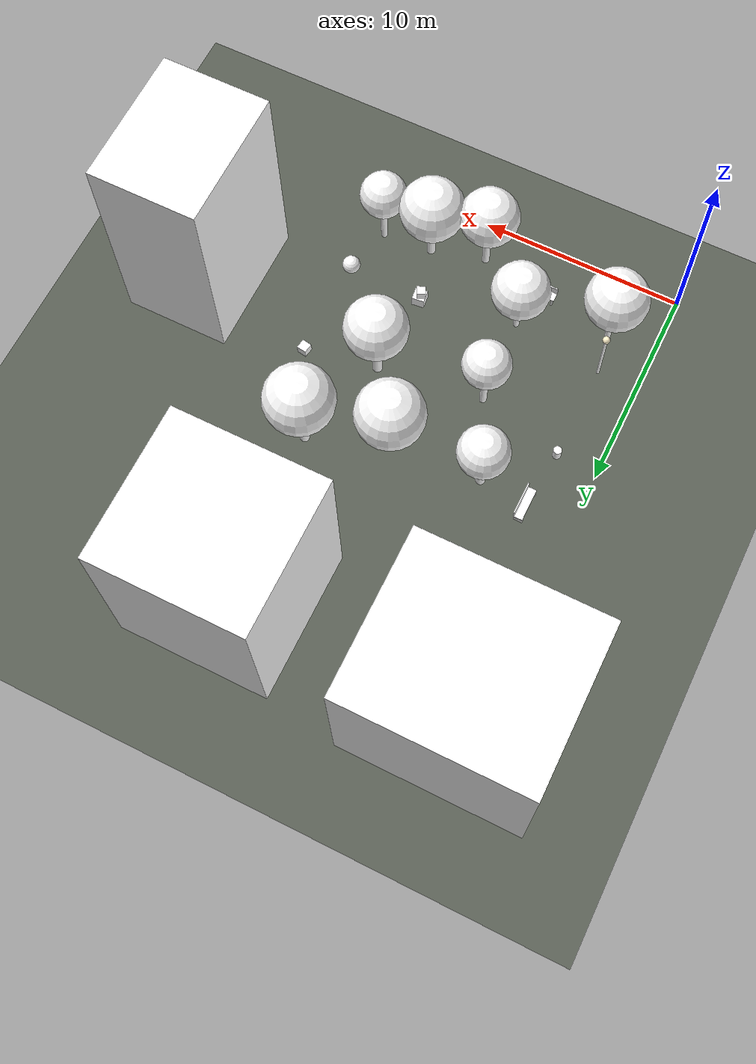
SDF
<sdf version="1.9">
 <world name="park_0">
  <model name="ground_plane">
   <static>true</static>
   <link name="link">
    <collision name="collision">
     <geometry><plane><normal>0 0 1</normal><size>300.000 300.000</size></plane></geometry>
     <surface><friction><ode><mu>1.0</mu><mu2>1.0</mu2></ode></friction></surface>
    </collision>
    <visual name="visual">
     <geometry><plane><normal>0 0 1</normal><size>300.000 300.000</size></plane></geometry>
     <material>
      <ambient>0.350 0.370 0.330 1</ambient>
      <diffuse>0.350 0.370 0.330 1</diffuse>
      <specular>0.08 0.08 0.08 1</specular>
     </material>
    </visual>
   </link>
  </model>
  <model name="building_10">
   <static>true</static>
   <pose>21.057 8.191 0.000 0.0000 0.0000 1.5708</pose>
   <link name="link">
    <collision name="c0">
     <pose>0.000 0.000 5.518 0.0000 0.0000 0.0000</pose>
     <geometry><box><size>6.497 5.113 11.036</size></box></geometry>
    </collision>
    <visual name="v0">
     <pose>0.000 0.000 5.518 0.0000 0.0000 0.0000</pose>
     <geometry><box><size>6.497 5.113 11.036</size></box></geometry>
     <material>
      <ambient>1.000 1.000 1.000 1</ambient>
      <diffuse>1.000 1.000 1.000 1</diffuse>
      <specular>0.08 0.08 0.08 1</specular>
      <pbr>
       <metal>
        <albedo_map>model://omnivla_textures/materials/textures/facade_gray.png</albedo_map>
        <roughness>0.85</roughness>
        <metalness>0.0</metalness>
       </metal>
      </pbr>
     </material>
    </visual>
   </link>
  </model>
  <model name="building_12">
   <static>true</static>
   <pose>0.742 22.301 0.000 0.0000 0.0000 0.0000</pose>
   <link name="link">
    <collision name="c0">
     <pose>0.000 0.000 4.250 0.0000 0.0000 0.0000</pose>
     <geometry><box><size>8.754 7.602 8.500</size></box></geometry>
    </collision>
    <visual name="v0">
     <pose>0.000 0.000 4.250 0.0000 0.0000 0.0000</pose>
     <geometry><box><size>8.754 7.602 8.500</size></box></geometry>
     <material>
      <ambient>1.000 1.000 1.000 1</ambient>
      <diffuse>1.000 1.000 1.000 1</diffuse>
      <specular>0.08 0.08 0.08 1</specular>
      <pbr>
       <metal>
        <albedo_map>model://omnivla_textures/materials/textures/brick_red.png</albedo_map>
        <roughness>0.85</roughness>
        <metalness>0.0</metalness>
       </metal>
      </pbr>
     </material>
    </visual>
   </link>
  </model>
  <model name="building_13">
   <static>true</static>
   <pose>12.219 22.051 0.000 0.0000 0.0000 0.0000</pose>
   <link name="link">
    <collision name="c0">
     <pose>0.000 0.000 4.686 0.0000 0.0000 0.0000</pose>
     <geometry><box><size>7.241 7.101 9.373</size></box></geometry>
    </collision>
    <visual name="v0">
     <pose>0.000 0.000 4.686 0.0000 0.0000 0.0000</pose>
     <geometry><box><size>7.241 7.101 9.373</size></box></geometry>
     <material>
      <ambient>1.000 1.000 1.000 1</ambient>
      <diffuse>1.000 1.000 1.000 1</diffuse>
      <specular>0.08 0.08 0.08 1</specular>
      <pbr>
       <metal>
        <albedo_map>model://omnivla_textures/materials/textures/facade_beige.png</albedo_map>
        <roughness>0.85</roughness>
        <metalness>0.0</metalness>
       </metal>
      </pbr>
     </material>
    </visual>
   </link>
  </model>
  <model name="tree_26">
   <static>true</static>
   <pose>12.823 14.038 0.000 0.0000 0.0000 -3.0492</pose>
   <link name="link">
    <collision name="c0">
     <pose>0.000 0.000 1.591 0.0000 0.0000 0.0000</pose>
     <geometry><cylinder><radius>0.226</radius><length>3.181</length></cylinder></geometry>
    </collision>
    <visual name="v0">
     <pose>0.000 0.000 1.591 0.0000 0.0000 0.0000</pose>
     <geometry><cylinder><radius>0.226</radius><length>3.181</length></cylinder></geometry>
     <material>
      <ambient>1.000 1.000 1.000 1</ambient>
      <diffuse>1.000 1.000 1.000 1</diffuse>
      <specular>0.08 0.08 0.08 1</specular>
      <pbr>
       <metal>
        <albedo_map>model://omnivla_textures/materials/textures/bark.png</albedo_map>
        <roughness>0.85</roughness>
        <metalness>0.0</metalness>
       </metal>
      </pbr>
     </material>
    </visual>
    <visual name="v1">
     <pose>0.000 0.000 4.183 0.0000 0.0000 0.0000</pose>
     <geometry><sphere><radius>1.670</radius></sphere></geometry>
     <material>
      <ambient>1.000 1.000 1.000 1</ambient>
      <diffuse>1.000 1.000 1.000 1</diffuse>
      <specular>0.08 0.08 0.08 1</specular>
      <pbr>
       <metal>
        <albedo_map>model://omnivla_textures/materials/textures/leaves.png</albedo_map>
        <roughness>0.85</roughness>
        <metalness>0.0</metalness>
       </metal>
      </pbr>
     </material>
    </visual>
   </link>
  </model>
  <model name="tree_28">
   <static>true</static>
   <pose>9.056 12.706 0.000 0.0000 0.0000 -1.4694</pose>
   <link name="link">
    <collision name="c0">
     <pose>0.000 0.000 1.321 0.0000 0.0000 0.0000</pose>
     <geometry><cylinder><radius>0.194</radius><length>2.643</length></cylinder></geometry>
    </collision>
    <visual name="v0">
     <pose>0.000 0.000 1.321 0.0000 0.0000 0.0000</pose>
     <geometry><cylinder><radius>0.194</radius><length>2.643</length></cylinder></geometry>
     <material>
      <ambient>1.000 1.000 1.000 1</ambient>
      <diffuse>1.000 1.000 1.000 1</diffuse>
      <specular>0.08 0.08 0.08 1</specular>
      <pbr>
       <metal>
        <albedo_map>model://omnivla_textures/materials/textures/bark.png</albedo_map>
        <roughness>0.85</roughness>
        <metalness>0.0</metalness>
       </metal>
      </pbr>
     </material>
    </visual>
    <visual name="v1">
     <pose>0.000 0.000 3.634 0.0000 0.0000 0.0000</pose>
     <geometry><sphere><radius>1.652</radius></sphere></geometry>
     <material>
      <ambient>1.000 1.000 1.000 1</ambient>
      <diffuse>1.000 1.000 1.000 1</diffuse>
      <specular>0.08 0.08 0.08 1</specular>
      <pbr>
       <metal>
        <albedo_map>model://omnivla_textures/materials/textures/leaves.png</albedo_map>
        <roughness>0.85</roughness>
        <metalness>0.0</metalness>
       </metal>
      </pbr>
     </material>
    </visual>
   </link>
  </model>
  <model name="tree_33">
   <static>true</static>
   <pose>9.291 1.814 0.000 0.0000 0.0000 -1.3294</pose>
   <link name="link">
    <collision name="c0">
     <pose>0.000 0.000 1.509 0.0000 0.0000 0.0000</pose>
     <geometry><cylinder><radius>0.181</radius><length>3.018</length></cylinder></geometry>
    </collision>
    <visual name="v0">
     <pose>0.000 0.000 1.509 0.0000 0.0000 0.0000</pose>
     <geometry><cylinder><radius>0.181</radius><length>3.018</length></cylinder></geometry>
     <material>
      <ambient>1.000 1.000 1.000 1</ambient>
      <diffuse>1.000 1.000 1.000 1</diffuse>
      <specular>0.08 0.08 0.08 1</specular>
      <pbr>
       <metal>
        <albedo_map>model://omnivla_textures/materials/textures/bark.png</albedo_map>
        <roughness>0.85</roughness>
        <metalness>0.0</metalness>
       </metal>
      </pbr>
     </material>
    </visual>
    <visual name="v1">
     <pose>0.000 0.000 3.881 0.0000 0.0000 0.0000</pose>
     <geometry><sphere><radius>1.439</radius></sphere></geometry>
     <material>
      <ambient>1.000 1.000 1.000 1</ambient>
      <diffuse>1.000 1.000 1.000 1</diffuse>
      <specular>0.08 0.08 0.08 1</specular>
      <pbr>
       <metal>
        <albedo_map>model://omnivla_textures/materials/textures/leaves.png</albedo_map>
        <roughness>0.85</roughness>
        <metalness>0.0</metalness>
       </metal>
      </pbr>
     </material>
    </visual>
   </link>
  </model>
  <model name="tree_40">
   <static>true</static>
   <pose>11.403 9.370 0.000 0.0000 0.0000 1.0549</pose>
   <link name="link">
    <collision name="c0">
     <pose>0.000 0.000 1.563 0.0000 0.0000 0.0000</pose>
     <geometry><cylinder><radius>0.236</radius><length>3.126</length></cylinder></geometry>
    </collision>
    <visual name="v0">
     <pose>0.000 0.000 1.563 0.0000 0.0000 0.0000</pose>
     <geometry><cylinder><radius>0.236</radius><length>3.126</length></cylinder></geometry>
     <material>
      <ambient>1.000 1.000 1.000 1</ambient>
      <diffuse>1.000 1.000 1.000 1</diffuse>
      <specular>0.08 0.08 0.08 1</specular>
      <pbr>
       <metal>
        <albedo_map>model://omnivla_textures/materials/textures/bark.png</albedo_map>
        <roughness>0.85</roughness>
        <metalness>0.0</metalness>
       </metal>
      </pbr>
     </material>
    </visual>
    <visual name="v1">
     <pose>0.000 0.000 4.040 0.0000 0.0000 0.0000</pose>
     <geometry><sphere><radius>1.524</radius></sphere></geometry>
     <material>
      <ambient>1.000 1.000 1.000 1</ambient>
      <diffuse>1.000 1.000 1.000 1</diffuse>
      <specular>0.08 0.08 0.08 1</specular>
      <pbr>
       <metal>
        <albedo_map>model://omnivla_textures/materials/textures/leaves.png</albedo_map>
        <roughness>0.85</roughness>
        <metalness>0.0</metalness>
       </metal>
      </pbr>
     </material>
    </visual>
   </link>
  </model>
  <model name="tree_44">
   <static>true</static>
   <pose>14.348 2.696 0.000 0.0000 0.0000 -1.1330</pose>
   <link name="link">
    <collision name="c0">
     <pose>0.000 0.000 1.436 0.0000 0.0000 0.0000</pose>
     <geometry><cylinder><radius>0.159</radius><length>2.873</length></cylinder></geometry>
    </collision>
    <visual name="v0">
     <pose>0.000 0.000 1.436 0.0000 0.0000 0.0000</pose>
     <geometry><cylinder><radius>0.159</radius><length>2.873</length></cylinder></geometry>
     <material>
      <ambient>1.000 1.000 1.000 1</ambient>
      <diffuse>1.000 1.000 1.000 1</diffuse>
      <specular>0.08 0.08 0.08 1</specular>
      <pbr>
       <metal>
        <albedo_map>model://omnivla_textures/materials/textures/bark.png</albedo_map>
        <roughness>0.85</roughness>
        <metalness>0.0</metalness>
       </metal>
      </pbr>
     </material>
    </visual>
    <visual name="v1">
     <pose>0.000 0.000 3.554 0.0000 0.0000 0.0000</pose>
     <geometry><sphere><radius>1.137</radius></sphere></geometry>
     <material>
      <ambient>1.000 1.000 1.000 1</ambient>
      <diffuse>1.000 1.000 1.000 1</diffuse>
      <specular>0.08 0.08 0.08 1</specular>
      <pbr>
       <metal>
        <albedo_map>model://omnivla_textures/materials/textures/leaves.png</albedo_map>
        <roughness>0.85</roughness>
        <metalness>0.0</metalness>
       </metal>
      </pbr>
     </material>
    </visual>
   </link>
  </model>
  <model name="tree_45">
   <static>true</static>
   <pose>2.331 3.067 0.000 0.0000 0.0000 2.9055</pose>
   <link name="link">
    <collision name="c0">
     <pose>0.000 0.000 1.350 0.0000 0.0000 0.0000</pose>
     <geometry><cylinder><radius>0.147</radius><length>2.700</length></cylinder></geometry>
    </collision>
    <visual name="v0">
     <pose>0.000 0.000 1.350 0.0000 0.0000 0.0000</pose>
     <geometry><cylinder><radius>0.147</radius><length>2.700</length></cylinder></geometry>
     <material>
      <ambient>1.000 1.000 1.000 1</ambient>
      <diffuse>1.000 1.000 1.000 1</diffuse>
      <specular>0.08 0.08 0.08 1</specular>
      <pbr>
       <metal>
        <albedo_map>model://omnivla_textures/materials/textures/bark.png</albedo_map>
        <roughness>0.85</roughness>
        <metalness>0.0</metalness>
       </metal>
      </pbr>
     </material>
    </visual>
    <visual name="v1">
     <pose>0.000 0.000 3.612 0.0000 0.0000 0.0000</pose>
     <geometry><sphere><radius>1.521</radius></sphere></geometry>
     <material>
      <ambient>1.000 1.000 1.000 1</ambient>
      <diffuse>1.000 1.000 1.000 1</diffuse>
      <specular>0.08 0.08 0.08 1</specular>
      <pbr>
       <metal>
        <albedo_map>model://omnivla_textures/materials/textures/leaves.png</albedo_map>
        <roughness>0.85</roughness>
        <metalness>0.0</metalness>
       </metal>
      </pbr>
     </material>
    </visual>
   </link>
  </model>
  <model name="tree_52">
   <static>true</static>
   <pose>4.654 12.411 0.000 0.0000 0.0000 -2.7315</pose>
   <link name="link">
    <collision name="c0">
     <pose>0.000 0.000 1.291 0.0000 0.0000 0.0000</pose>
     <geometry><cylinder><radius>0.223</radius><length>2.582</length></cylinder></geometry>
    </collision>
    <visual name="v0">
     <pose>0.000 0.000 1.291 0.0000 0.0000 0.0000</pose>
     <geometry><cylinder><radius>0.223</radius><length>2.582</length></cylinder></geometry>
     <material>
      <ambient>1.000 1.000 1.000 1</ambient>
      <diffuse>1.000 1.000 1.000 1</diffuse>
      <specular>0.08 0.08 0.08 1</specular>
      <pbr>
       <metal>
        <albedo_map>model://omnivla_textures/materials/textures/bark.png</albedo_map>
        <roughness>0.85</roughness>
        <metalness>0.0</metalness>
       </metal>
      </pbr>
     </material>
    </visual>
    <visual name="v1">
     <pose>0.000 0.000 3.319 0.0000 0.0000 0.0000</pose>
     <geometry><sphere><radius>1.228</radius></sphere></geometry>
     <material>
      <ambient>1.000 1.000 1.000 1</ambient>
      <diffuse>1.000 1.000 1.000 1</diffuse>
      <specular>0.08 0.08 0.08 1</specular>
      <pbr>
       <metal>
        <albedo_map>model://omnivla_textures/materials/textures/leaves.png</albedo_map>
        <roughness>0.85</roughness>
        <metalness>0.0</metalness>
       </metal>
      </pbr>
     </material>
    </visual>
   </link>
  </model>
  <model name="tree_54">
   <static>true</static>
   <pose>6.253 8.675 0.000 0.0000 0.0000 1.8799</pose>
   <link name="link">
    <collision name="c0">
     <pose>0.000 0.000 1.498 0.0000 0.0000 0.0000</pose>
     <geometry><cylinder><radius>0.172</radius><length>2.997</length></cylinder></geometry>
    </collision>
    <visual name="v0">
     <pose>0.000 0.000 1.498 0.0000 0.0000 0.0000</pose>
     <geometry><cylinder><radius>0.172</radius><length>2.997</length></cylinder></geometry>
     <material>
      <ambient>1.000 1.000 1.000 1</ambient>
      <diffuse>1.000 1.000 1.000 1</diffuse>
      <specular>0.08 0.08 0.08 1</specular>
      <pbr>
       <metal>
        <albedo_map>model://omnivla_textures/materials/textures/bark.png</albedo_map>
        <roughness>0.85</roughness>
        <metalness>0.0</metalness>
       </metal>
      </pbr>
     </material>
    </visual>
    <visual name="v1">
     <pose>0.000 0.000 3.691 0.0000 0.0000 0.0000</pose>
     <geometry><sphere><radius>1.158</radius></sphere></geometry>
     <material>
      <ambient>1.000 1.000 1.000 1</ambient>
      <diffuse>1.000 1.000 1.000 1</diffuse>
      <specular>0.08 0.08 0.08 1</specular>
      <pbr>
       <metal>
        <albedo_map>model://omnivla_textures/materials/textures/leaves.png</albedo_map>
        <roughness>0.85</roughness>
        <metalness>0.0</metalness>
       </metal>
      </pbr>
     </material>
    </visual>
   </link>
  </model>
  <model name="tree_61">
   <static>true</static>
   <pose>11.904 2.500 0.000 0.0000 0.0000 -2.8889</pose>
   <link name="link">
    <collision name="c0">
     <pose>0.000 0.000 1.385 0.0000 0.0000 0.0000</pose>
     <geometry><cylinder><radius>0.211</radius><length>2.769</length></cylinder></geometry>
    </collision>
    <visual name="v0">
     <pose>0.000 0.000 1.385 0.0000 0.0000 0.0000</pose>
     <geometry><cylinder><radius>0.211</radius><length>2.769</length></cylinder></geometry>
     <material>
      <ambient>1.000 1.000 1.000 1</ambient>
      <diffuse>1.000 1.000 1.000 1</diffuse>
      <specular>0.08 0.08 0.08 1</specular>
      <pbr>
       <metal>
        <albedo_map>model://omnivla_textures/materials/textures/bark.png</albedo_map>
        <roughness>0.85</roughness>
        <metalness>0.0</metalness>
       </metal>
      </pbr>
     </material>
    </visual>
    <visual name="v1">
     <pose>0.000 0.000 3.716 0.0000 0.0000 0.0000</pose>
     <geometry><sphere><radius>1.578</radius></sphere></geometry>
     <material>
      <ambient>1.000 1.000 1.000 1</ambient>
      <diffuse>1.000 1.000 1.000 1</diffuse>
      <specular>0.08 0.08 0.08 1</specular>
      <pbr>
       <metal>
        <albedo_map>model://omnivla_textures/materials/textures/leaves.png</albedo_map>
        <roughness>0.85</roughness>
        <metalness>0.0</metalness>
       </metal>
      </pbr>
     </material>
    </visual>
   </link>
  </model>
  <model name="tree_68">
   <static>true</static>
   <pose>6.503 4.381 0.000 0.0000 0.0000 0.6996</pose>
   <link name="link">
    <collision name="c0">
     <pose>0.000 0.000 1.223 0.0000 0.0000 0.0000</pose>
     <geometry><cylinder><radius>0.147</radius><length>2.446</length></cylinder></geometry>
    </collision>
    <visual name="v0">
     <pose>0.000 0.000 1.223 0.0000 0.0000 0.0000</pose>
     <geometry><cylinder><radius>0.147</radius><length>2.446</length></cylinder></geometry>
     <material>
      <ambient>1.000 1.000 1.000 1</ambient>
      <diffuse>1.000 1.000 1.000 1</diffuse>
      <specular>0.08 0.08 0.08 1</specular>
      <pbr>
       <metal>
        <albedo_map>model://omnivla_textures/materials/textures/bark.png</albedo_map>
        <roughness>0.85</roughness>
        <metalness>0.0</metalness>
       </metal>
      </pbr>
     </material>
    </visual>
    <visual name="v1">
     <pose>0.000 0.000 3.288 0.0000 0.0000 0.0000</pose>
     <geometry><sphere><radius>1.402</radius></sphere></geometry>
     <material>
      <ambient>1.000 1.000 1.000 1</ambient>
      <diffuse>1.000 1.000 1.000 1</diffuse>
      <specular>0.08 0.08 0.08 1</specular>
      <pbr>
       <metal>
        <albedo_map>model://omnivla_textures/materials/textures/leaves.png</albedo_map>
        <roughness>0.85</roughness>
        <metalness>0.0</metalness>
       </metal>
      </pbr>
     </material>
    </visual>
   </link>
  </model>
  <model name="bench_77">
   <static>true</static>
   <pose>6.121 2.499 0.000 0.0000 0.0000 0.0000</pose>
   <link name="link">
    <collision name="c0">
     <pose>0.000 0.000 0.450 0.0000 0.0000 0.0000</pose>
     <geometry><box><size>1.600 0.450 0.080</size></box></geometry>
    </collision>
    <visual name="v0">
     <pose>0.000 0.000 0.450 0.0000 0.0000 0.0000</pose>
     <geometry><box><size>1.600 0.450 0.080</size></box></geometry>
     <material>
      <ambient>1.000 1.000 1.000 1</ambient>
      <diffuse>1.000 1.000 1.000 1</diffuse>
      <specular>0.08 0.08 0.08 1</specular>
      <pbr>
       <metal>
        <albedo_map>model://omnivla_textures/materials/textures/wood_floor.png</albedo_map>
        <roughness>0.85</roughness>
        <metalness>0.0</metalness>
       </metal>
      </pbr>
     </material>
    </visual>
    <collision name="c1">
     <pose>0.000 -0.200 0.750 0.0000 0.0000 0.0000</pose>
     <geometry><box><size>1.600 0.060 0.400</size></box></geometry>
    </collision>
    <visual name="v1">
     <pose>0.000 -0.200 0.750 0.0000 0.0000 0.0000</pose>
     <geometry><box><size>1.600 0.060 0.400</size></box></geometry>
     <material>
      <ambient>1.000 1.000 1.000 1</ambient>
      <diffuse>1.000 1.000 1.000 1</diffuse>
      <specular>0.08 0.08 0.08 1</specular>
      <pbr>
       <metal>
        <albedo_map>model://omnivla_textures/materials/textures/wood_floor.png</albedo_map>
        <roughness>0.85</roughness>
        <metalness>0.0</metalness>
       </metal>
      </pbr>
     </material>
    </visual>
    <collision name="c2">
     <pose>0.700 0.000 0.225 0.0000 0.0000 0.0000</pose>
     <geometry><box><size>0.080 0.450 0.450</size></box></geometry>
    </collision>
    <visual name="v2">
     <pose>0.700 0.000 0.225 0.0000 0.0000 0.0000</pose>
     <geometry><box><size>0.080 0.450 0.450</size></box></geometry>
     <material>
      <ambient>1.000 1.000 1.000 1</ambient>
      <diffuse>1.000 1.000 1.000 1</diffuse>
      <specular>0.08 0.08 0.08 1</specular>
      <pbr>
       <metal>
        <albedo_map>model://omnivla_textures/materials/textures/metal.png</albedo_map>
        <roughness>0.85</roughness>
        <metalness>0.0</metalness>
       </metal>
      </pbr>
     </material>
    </visual>
    <collision name="c3">
     <pose>-0.700 0.000 0.225 0.0000 0.0000 0.0000</pose>
     <geometry><box><size>0.080 0.450 0.450</size></box></geometry>
    </collision>
    <visual name="v3">
     <pose>-0.700 0.000 0.225 0.0000 0.0000 0.0000</pose>
     <geometry><box><size>0.080 0.450 0.450</size></box></geometry>
     <material>
      <ambient>1.000 1.000 1.000 1</ambient>
      <diffuse>1.000 1.000 1.000 1</diffuse>
      <specular>0.08 0.08 0.08 1</specular>
      <pbr>
       <metal>
        <albedo_map>model://omnivla_textures/materials/textures/metal.png</albedo_map>
        <roughness>0.85</roughness>
        <metalness>0.0</metalness>
       </metal>
      </pbr>
     </material>
    </visual>
   </link>
  </model>
  <model name="bench_100">
   <static>true</static>
   <pose>2.312 12.726 0.000 0.0000 0.0000 1.5708</pose>
   <link name="link">
    <collision name="c0">
     <pose>0.000 0.000 0.450 0.0000 0.0000 0.0000</pose>
     <geometry><box><size>1.600 0.450 0.080</size></box></geometry>
    </collision>
    <visual name="v0">
     <pose>0.000 0.000 0.450 0.0000 0.0000 0.0000</pose>
     <geometry><box><size>1.600 0.450 0.080</size></box></geometry>
     <material>
      <ambient>1.000 1.000 1.000 1</ambient>
      <diffuse>1.000 1.000 1.000 1</diffuse>
      <specular>0.08 0.08 0.08 1</specular>
      <pbr>
       <metal>
        <albedo_map>model://omnivla_textures/materials/textures/wood_floor.png</albedo_map>
        <roughness>0.85</roughness>
        <metalness>0.0</metalness>
       </metal>
      </pbr>
     </material>
    </visual>
    <collision name="c1">
     <pose>0.000 -0.200 0.750 0.0000 0.0000 0.0000</pose>
     <geometry><box><size>1.600 0.060 0.400</size></box></geometry>
    </collision>
    <visual name="v1">
     <pose>0.000 -0.200 0.750 0.0000 0.0000 0.0000</pose>
     <geometry><box><size>1.600 0.060 0.400</size></box></geometry>
     <material>
      <ambient>1.000 1.000 1.000 1</ambient>
      <diffuse>1.000 1.000 1.000 1</diffuse>
      <specular>0.08 0.08 0.08 1</specular>
      <pbr>
       <metal>
        <albedo_map>model://omnivla_textures/materials/textures/wood_floor.png</albedo_map>
        <roughness>0.85</roughness>
        <metalness>0.0</metalness>
       </metal>
      </pbr>
     </material>
    </visual>
    <collision name="c2">
     <pose>0.700 0.000 0.225 0.0000 0.0000 0.0000</pose>
     <geometry><box><size>0.080 0.450 0.450</size></box></geometry>
    </collision>
    <visual name="v2">
     <pose>0.700 0.000 0.225 0.0000 0.0000 0.0000</pose>
     <geometry><box><size>0.080 0.450 0.450</size></box></geometry>
     <material>
      <ambient>1.000 1.000 1.000 1</ambient>
      <diffuse>1.000 1.000 1.000 1</diffuse>
      <specular>0.08 0.08 0.08 1</specular>
      <pbr>
       <metal>
        <albedo_map>model://omnivla_textures/materials/textures/metal.png</albedo_map>
        <roughness>0.85</roughness>
        <metalness>0.0</metalness>
       </metal>
      </pbr>
     </material>
    </visual>
    <collision name="c3">
     <pose>-0.700 0.000 0.225 0.0000 0.0000 0.0000</pose>
     <geometry><box><size>0.080 0.450 0.450</size></box></geometry>
    </collision>
    <visual name="v3">
     <pose>-0.700 0.000 0.225 0.0000 0.0000 0.0000</pose>
     <geometry><box><size>0.080 0.450 0.450</size></box></geometry>
     <material>
      <ambient>1.000 1.000 1.000 1</ambient>
      <diffuse>1.000 1.000 1.000 1</diffuse>
      <specular>0.08 0.08 0.08 1</specular>
      <pbr>
       <metal>
        <albedo_map>model://omnivla_textures/materials/textures/metal.png</albedo_map>
        <roughness>0.85</roughness>
        <metalness>0.0</metalness>
       </metal>
      </pbr>
     </material>
    </visual>
   </link>
  </model>
  <model name="lamp_119">
   <static>true</static>
   <pose>1.992 5.021 0.000 0.0000 0.0000 1.5708</pose>
   <link name="link">
    <collision name="c0">
     <pose>0.000 0.000 1.600 0.0000 0.0000 0.0000</pose>
     <geometry><cylinder><radius>0.070</radius><length>3.200</length></cylinder></geometry>
    </collision>
    <visual name="v0">
     <pose>0.000 0.000 1.600 0.0000 0.0000 0.0000</pose>
     <geometry><cylinder><radius>0.070</radius><length>3.200</length></cylinder></geometry>
     <material>
      <ambient>1.000 1.000 1.000 1</ambient>
      <diffuse>1.000 1.000 1.000 1</diffuse>
      <specular>0.08 0.08 0.08 1</specular>
      <pbr>
       <metal>
        <albedo_map>model://omnivla_textures/materials/textures/metal.png</albedo_map>
        <roughness>0.85</roughness>
        <metalness>0.0</metalness>
       </metal>
      </pbr>
     </material>
    </visual>
    <visual name="v1">
     <pose>0.000 0.000 3.300 0.0000 0.0000 0.0000</pose>
     <geometry><sphere><radius>0.180</radius></sphere></geometry>
     <material>
      <ambient>1.000 0.950 0.800 1</ambient>
      <diffuse>1.000 0.950 0.800 1</diffuse>
      <specular>0.08 0.08 0.08 1</specular>
     </material>
    </visual>
   </link>
  </model>
  <model name="bin_230">
   <static>true</static>
   <pose>2.023 9.747 0.000 0.0000 0.0000 1.5708</pose>
   <link name="link">
    <collision name="c0">
     <pose>0.000 0.000 0.300 0.0000 0.0000 0.0000</pose>
     <geometry><cylinder><radius>0.200</radius><length>0.600</length></cylinder></geometry>
    </collision>
    <visual name="v0">
     <pose>0.000 0.000 0.300 0.0000 0.0000 0.0000</pose>
     <geometry><cylinder><radius>0.200</radius><length>0.600</length></cylinder></geometry>
     <material>
      <ambient>1.000 1.000 1.000 1</ambient>
      <diffuse>1.000 1.000 1.000 1</diffuse>
      <specular>0.08 0.08 0.08 1</specular>
      <pbr>
       <metal>
        <albedo_map>model://omnivla_textures/materials/textures/fabric_green.png</albedo_map>
        <roughness>0.85</roughness>
        <metalness>0.0</metalness>
       </metal>
      </pbr>
     </material>
    </visual>
   </link>
  </model>
  <model name="rock_450">
   <static>true</static>
   <pose>14.987 5.009 0.000 0.0000 0.0000 0.6892</pose>
   <link name="link">
    <collision name="c0">
     <pose>0.000 0.000 0.174 0.0000 0.0000 0.0000</pose>
     <geometry><sphere><radius>0.434</radius></sphere></geometry>
    </collision>
    <visual name="v0">
     <pose>0.000 0.000 0.174 0.0000 0.0000 0.0000</pose>
     <geometry><sphere><radius>0.434</radius></sphere></geometry>
     <material>
      <ambient>1.000 1.000 1.000 1</ambient>
      <diffuse>1.000 1.000 1.000 1</diffuse>
      <specular>0.08 0.08 0.08 1</specular>
      <pbr>
       <metal>
        <albedo_map>model://omnivla_textures/materials/textures/rock.png</albedo_map>
        <roughness>0.85</roughness>
        <metalness>0.0</metalness>
       </metal>
      </pbr>
     </material>
    </visual>
   </link>
  </model>
  <model name="cone_462">
   <static>true</static>
   <pose>6.206 6.699 0.000 0.0000 0.0000 2.9936</pose>
   <link name="link">
    <collision name="c0">
     <pose>0.000 0.000 0.020 0.0000 0.0000 0.0000</pose>
     <geometry><box><size>0.400 0.400 0.040</size></box></geometry>
    </collision>
    <visual name="v0">
     <pose>0.000 0.000 0.020 0.0000 0.0000 0.0000</pose>
     <geometry><box><size>0.400 0.400 0.040</size></box></geometry>
     <material>
      <ambient>0.100 0.100 0.100 1</ambient>
      <diffuse>0.100 0.100 0.100 1</diffuse>
      <specular>0.08 0.08 0.08 1</specular>
     </material>
    </visual>
    <collision name="c1">
     <pose>0.000 0.000 0.320 0.0000 0.0000 0.0000</pose>
     <geometry><cylinder><radius>0.130</radius><length>0.600</length></cylinder></geometry>
    </collision>
    <visual name="v1">
     <pose>0.000 0.000 0.320 0.0000 0.0000 0.0000</pose>
     <geometry><cylinder><radius>0.130</radius><length>0.600</length></cylinder></geometry>
     <material>
      <ambient>1.000 1.000 1.000 1</ambient>
      <diffuse>1.000 1.000 1.000 1</diffuse>
      <specular>0.08 0.08 0.08 1</specular>
      <pbr>
       <metal>
        <albedo_map>model://omnivla_textures/materials/textures/stripes_orange.png</albedo_map>
        <roughness>0.85</roughness>
        <metalness>0.0</metalness>
       </metal>
      </pbr>
     </material>
    </visual>
   </link>
  </model>
  <model name="crate_467">
   <static>true</static>
   <pose>11.182 5.270 0.000 0.0000 0.0000 -3.0244</pose>
   <link name="link">
    <collision name="c0">
     <pose>0.000 0.000 0.301 0.0000 0.0000 0.0000</pose>
     <geometry><box><size>0.602 0.602 0.602</size></box></geometry>
    </collision>
    <visual name="v0">
     <pose>0.000 0.000 0.301 0.0000 0.0000 0.0000</pose>
     <geometry><box><size>0.602 0.602 0.602</size></box></geometry>
     <material>
      <ambient>1.000 1.000 1.000 1</ambient>
      <diffuse>1.000 1.000 1.000 1</diffuse>
      <specular>0.08 0.08 0.08 1</specular>
      <pbr>
       <metal>
        <albedo_map>model://omnivla_textures/materials/textures/cardboard.png</albedo_map>
        <roughness>0.85</roughness>
        <metalness>0.0</metalness>
       </metal>
      </pbr>
     </material>
    </visual>
    <collision name="c1">
     <pose>0.050 0.030 0.813 0.0000 0.0000 0.3000</pose>
     <geometry><box><size>0.421 0.421 0.421</size></box></geometry>
    </collision>
    <visual name="v1">
     <pose>0.050 0.030 0.813 0.0000 0.0000 0.3000</pose>
     <geometry><box><size>0.421 0.421 0.421</size></box></geometry>
     <material>
      <ambient>1.000 1.000 1.000 1</ambient>
      <diffuse>1.000 1.000 1.000 1</diffuse>
      <specular>0.08 0.08 0.08 1</specular>
      <pbr>
       <metal>
        <albedo_map>model://omnivla_textures/materials/textures/cardboard.png</albedo_map>
        <roughness>0.85</roughness>
        <metalness>0.0</metalness>
       </metal>
      </pbr>
     </material>
    </visual>
   </link>
  </model>
  <model name="crate_470">
   <static>true</static>
   <pose>14.905 10.068 0.000 0.0000 0.0000 1.4132</pose>
   <link name="link">
    <collision name="c0">
     <pose>0.000 0.000 0.237 0.0000 0.0000 0.0000</pose>
     <geometry><box><size>0.474 0.474 0.474</size></box></geometry>
    </collision>
    <visual name="v0">
     <pose>0.000 0.000 0.237 0.0000 0.0000 0.0000</pose>
     <geometry><box><size>0.474 0.474 0.474</size></box></geometry>
     <material>
      <ambient>1.000 1.000 1.000 1</ambient>
      <diffuse>1.000 1.000 1.000 1</diffuse>
      <specular>0.08 0.08 0.08 1</specular>
      <pbr>
       <metal>
        <albedo_map>model://omnivla_textures/materials/textures/cardboard.png</albedo_map>
        <roughness>0.85</roughness>
        <metalness>0.0</metalness>
       </metal>
      </pbr>
     </material>
    </visual>
   </link>
  </model>
 </world>
</sdf>
